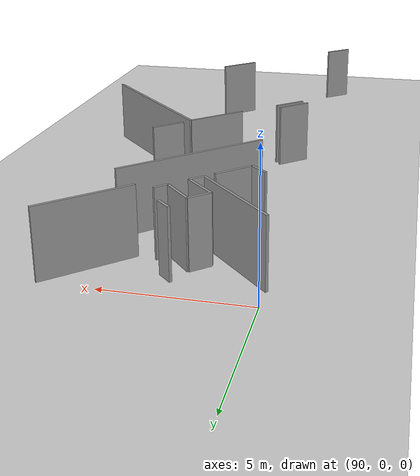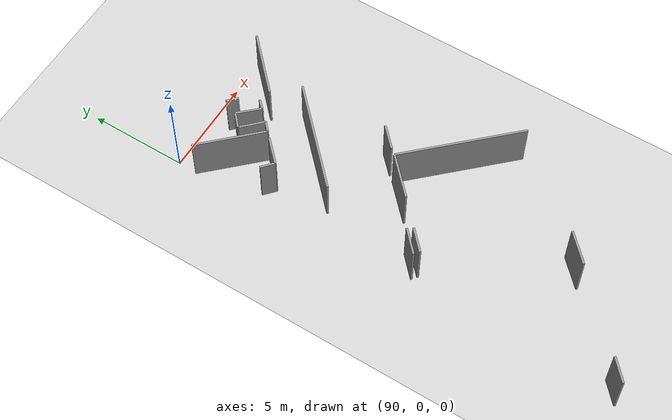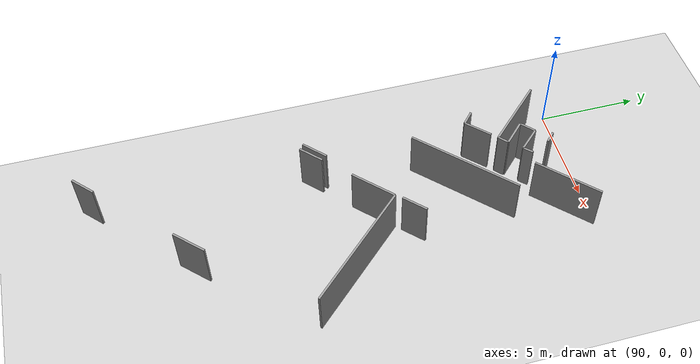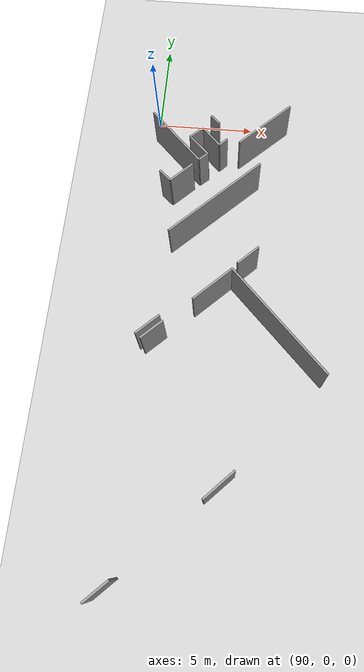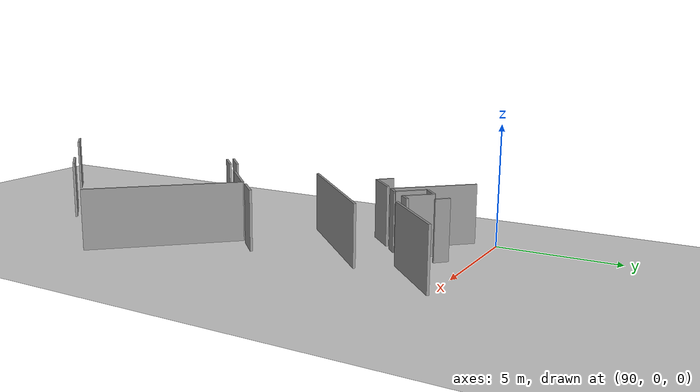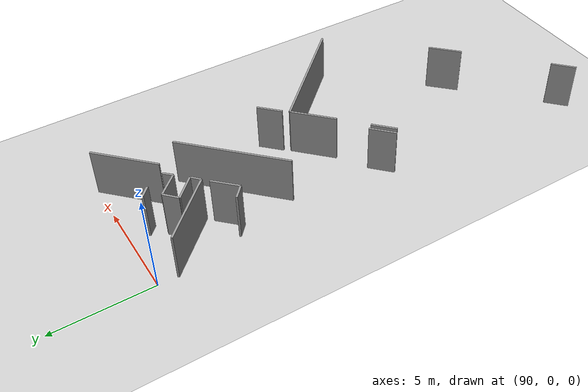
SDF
<sdf version="1.6">
 <world name="default">
  <model name="ground_plane">
   <static>1</static>
   <link name="link">
    <collision name="collision">
     <geometry><plane><normal>0 0 1</normal><size>100 100</size></plane></geometry>
     <surface><friction><ode><mu>100</mu><mu2>50</mu2></ode></friction></surface>
    </collision>
    <visual name="visual">
     <cast_shadows>0</cast_shadows>
     <geometry><plane><normal>0 0 1</normal><size>100 100</size></plane></geometry>
     <material>
      <script><uri>file://media/materials/scripts/gazebo.material</uri><name>Gazebo/Grey</name></script>
     </material>
    </visual>
   </link>
  </model>
  <model name="0510035343_A_40_1_102">
   <static>1</static>
   <link name="Wall_585">
    <collision name="Wall_585_Collision">
     <geometry><box><size>0.625201423975 0.1 2.5</size></box></geometry>
     <pose>0.312600711988 0 1.25 0 0 0</pose>
    </collision>
    <visual name="Wall_585_Visual">
     <pose>0.312600711988 0 1.25 0 0 0</pose>
     <geometry><box><size>0.625201423975 0.1 2.5</size></box></geometry>
     <material>
      <script><uri>file://media/materials/scripts/gazebo.material</uri><name>Gazebo/Grey</name></script>
      <ambient>1 1 1 1</ambient>
     </material>
    </visual>
    <pose>210.162429782 -25.6650480815 0 0 0 2.3846269295</pose>
   </link>
   <link name="Wall_649">
    <collision name="Wall_649_Collision">
     <geometry><box><size>3.6640591741 0.1 2.5</size></box></geometry>
     <pose>1.83202958705 0 1.25 0 0 0</pose>
    </collision>
    <visual name="Wall_649_Visual">
     <pose>1.83202958705 0 1.25 0 0 0</pose>
     <geometry><box><size>3.6640591741 0.1 2.5</size></box></geometry>
     <material>
      <script><uri>file://media/materials/scripts/gazebo.material</uri><name>Gazebo/Grey</name></script>
      <ambient>1 1 1 1</ambient>
     </material>
    </visual>
    <pose>209.304262274 -27.8919673744 0 0 0 2.34213161567</pose>
   </link>
   <link name="Wall_657">
    <collision name="Wall_657_Collision">
     <geometry><box><size>0.517345830783 0.1 2.5</size></box></geometry>
     <pose>0.258672915392 0 1.25 0 0 0</pose>
    </collision>
    <visual name="Wall_657_Visual">
     <pose>0.258672915392 0 1.25 0 0 0</pose>
     <geometry><box><size>0.517345830783 0.1 2.5</size></box></geometry>
     <material>
      <script><uri>file://media/materials/scripts/gazebo.material</uri><name>Gazebo/Grey</name></script>
      <ambient>1 1 1 1</ambient>
     </material>
    </visual>
    <pose>210.611825193 -26.5864356216 0 0 0 -2.33502444961</pose>
   </link>
   <link name="Wall_658">
    <collision name="Wall_658_Collision">
     <geometry><box><size>1.29811316026 0.1 2.5</size></box></geometry>
     <pose>0.64905658013 0 1.25 0 0 0</pose>
    </collision>
    <visual name="Wall_658_Visual">
     <pose>0.64905658013 0 1.25 0 0 0</pose>
     <geometry><box><size>1.29811316026 0.1 2.5</size></box></geometry>
     <material>
      <script><uri>file://media/materials/scripts/gazebo.material</uri><name>Gazebo/Grey</name></script>
      <ambient>1 1 1 1</ambient>
     </material>
    </visual>
    <pose>210.253832238 -26.9599162144 0 0 0 2.32479482334</pose>
   </link>
   <link name="Wall_659">
    <collision name="Wall_659_Collision">
     <geometry><box><size>0.828839471091 0.1 2.5</size></box></geometry>
     <pose>0.414419735545 0 1.25 0 0 0</pose>
    </collision>
    <visual name="Wall_659_Visual">
     <pose>0.414419735545 0 1.25 0 0 0</pose>
     <geometry><box><size>0.828839471091 0.1 2.5</size></box></geometry>
     <material>
      <script><uri>file://media/materials/scripts/gazebo.material</uri><name>Gazebo/Grey</name></script>
      <ambient>1 1 1 1</ambient>
     </material>
    </visual>
    <pose>209.365197245 -26.0136468945 0 0 0 -2.40581756591</pose>
   </link>
   <link name="Wall_660">
    <collision name="Wall_660_Collision">
     <geometry><box><size>1.35709766302 0.1 2.5</size></box></geometry>
     <pose>0.678548831508 0 1.25 0 0 0</pose>
    </collision>
    <visual name="Wall_660_Visual">
     <pose>0.678548831508 0 1.25 0 0 0</pose>
     <geometry><box><size>1.35709766302 0.1 2.5</size></box></geometry>
     <material>
      <script><uri>file://media/materials/scripts/gazebo.material</uri><name>Gazebo/Grey</name></script>
      <ambient>1 1 1 1</ambient>
     </material>
    </visual>
    <pose>208.750769621 -26.5699324003 0 0 0 -0.779974218704</pose>
   </link>
   <link name="Wall_661">
    <collision name="Wall_661_Collision">
     <geometry><box><size>0.551667183847 0.1 2.5</size></box></geometry>
     <pose>0.275833591923 0 1.25 0 0 0</pose>
    </collision>
    <visual name="Wall_661_Visual">
     <pose>0.275833591923 0 1.25 0 0 0</pose>
     <geometry><box><size>0.551667183847 0.1 2.5</size></box></geometry>
     <material>
      <script><uri>file://media/materials/scripts/gazebo.material</uri><name>Gazebo/Grey</name></script>
      <ambient>1 1 1 1</ambient>
     </material>
    </visual>
    <pose>209.715573328 -27.5243263829 0 0 0 -2.41219844705</pose>
   </link>
   <link name="Wall_668">
    <collision name="Wall_668_Collision">
     <geometry><box><size>5.79214066476 0.1 2.5</size></box></geometry>
     <pose>2.89607033238 0 1.25 0 0 0</pose>
    </collision>
    <visual name="Wall_668_Visual">
     <pose>2.89607033238 0 1.25 0 0 0</pose>
     <geometry><box><size>5.79214066476 0.1 2.5</size></box></geometry>
     <material>
      <script><uri>file://media/materials/scripts/gazebo.material</uri><name>Gazebo/Grey</name></script>
      <ambient>1 1 1 1</ambient>
     </material>
    </visual>
    <pose>208.197276968 -31.9306864705 0 0 0 0.768597710644</pose>
   </link>
   <link name="Wall_670">
    <collision name="Wall_670_Collision">
     <geometry><box><size>3.42888745458 0.1 2.5</size></box></geometry>
     <pose>1.71444372729 0 1.25 0 0 0</pose>
    </collision>
    <visual name="Wall_670_Visual">
     <pose>1.71444372729 0 1.25 0 0 0</pose>
     <geometry><box><size>3.42888745458 0.1 2.5</size></box></geometry>
     <material>
      <script><uri>file://media/materials/scripts/gazebo.material</uri><name>Gazebo/Grey</name></script>
      <ambient>1 1 1 1</ambient>
     </material>
    </visual>
    <pose>211.256720302 -26.7283633248 0 0 0 0.767385867816</pose>
   </link>
   <link name="Wall_678">
    <collision name="Wall_678_Collision">
     <geometry><box><size>1.37333962757 0.1 2.5</size></box></geometry>
     <pose>0.686669813785 0 1.25 0 0 0</pose>
    </collision>
    <visual name="Wall_678_Visual">
     <pose>0.686669813785 0 1.25 0 0 0</pose>
     <geometry><box><size>1.37333962757 0.1 2.5</size></box></geometry>
     <material>
      <script><uri>file://media/materials/scripts/gazebo.material</uri><name>Gazebo/Grey</name></script>
      <ambient>1 1 1 1</ambient>
     </material>
    </visual>
    <pose>208.237900282 -36.1920721064 0 0 0 -2.38678917823</pose>
   </link>
   <link name="Wall_683">
    <collision name="Wall_683_Collision">
     <geometry><box><size>1.43789597365 0.1 2.5</size></box></geometry>
     <pose>0.718947986827 0 1.25 0 0 0</pose>
    </collision>
    <visual name="Wall_683_Visual">
     <pose>0.718947986827 0 1.25 0 0 0</pose>
     <geometry><box><size>1.43789597365 0.1 2.5</size></box></geometry>
     <material>
      <script><uri>file://media/materials/scripts/gazebo.material</uri><name>Gazebo/Grey</name></script>
      <ambient>1 1 1 1</ambient>
     </material>
    </visual>
    <pose>209.022438034 -28.1664286394 0 0 0 -2.36256224031</pose>
   </link>
   <link name="Wall_684">
    <collision name="Wall_684_Collision">
     <geometry><box><size>0.756954203723 0.1 2.5</size></box></geometry>
     <pose>0.378477101861 0 1.25 0 0 0</pose>
    </collision>
    <visual name="Wall_684_Visual">
     <pose>0.378477101861 0 1.25 0 0 0</pose>
     <geometry><box><size>0.756954203723 0.1 2.5</size></box></geometry>
     <material>
      <script><uri>file://media/materials/scripts/gazebo.material</uri><name>Gazebo/Grey</name></script>
      <ambient>1 1 1 1</ambient>
     </material>
    </visual>
    <pose>207.999238313 -29.1766796788 0 0 0 2.41077206424</pose>
   </link>
   <link name="Wall_692">
    <collision name="Wall_692_Collision">
     <geometry><box><size>1.75029783802 0.1 2.5</size></box></geometry>
     <pose>0.875148919011 0 1.25 0 0 0</pose>
    </collision>
    <visual name="Wall_692_Visual">
     <pose>0.875148919011 0 1.25 0 0 0</pose>
     <geometry><box><size>1.75029783802 0.1 2.5</size></box></geometry>
     <material>
      <script><uri>file://media/materials/scripts/gazebo.material</uri><name>Gazebo/Grey</name></script>
      <ambient>1 1 1 1</ambient>
     </material>
    </visual>
    <pose>212.094576153 -42.681392618 0 0 0 -2.36347715967</pose>
   </link>
   <link name="Wall_693">
    <collision name="Wall_693_Collision">
     <geometry><box><size>1.29774878569 0.1 2.5</size></box></geometry>
     <pose>0.648874392845 0 1.25 0 0 0</pose>
    </collision>
    <visual name="Wall_693_Visual">
     <pose>0.648874392845 0 1.25 0 0 0</pose>
     <geometry><box><size>1.29774878569 0.1 2.5</size></box></geometry>
     <material>
      <script><uri>file://media/materials/scripts/gazebo.material</uri><name>Gazebo/Grey</name></script>
      <ambient>1 1 1 1</ambient>
     </material>
    </visual>
    <pose>207.491446888 -47.1453870323 0 0 0 -2.3916170979</pose>
   </link>
   <link name="Wall_697">
    <collision name="Wall_697_Collision">
     <geometry><box><size>1.28612052838 0.1 2.5</size></box></geometry>
     <pose>0.643060264188 0 1.25 0 0 0</pose>
    </collision>
    <visual name="Wall_697_Visual">
     <pose>0.643060264188 0 1.25 0 0 0</pose>
     <geometry><box><size>1.28612052838 0.1 2.5</size></box></geometry>
     <material>
      <script><uri>file://media/materials/scripts/gazebo.material</uri><name>Gazebo/Grey</name></script>
      <ambient>1 1 1 1</ambient>
     </material>
    </visual>
    <pose>207.486368974 -37.3287632105 0 0 0 0.757615898672</pose>
   </link>
   <link name="Wall_698">
    <collision name="Wall_698_Collision">
     <geometry><box><size>2.35985601259 0.1 2.5</size></box></geometry>
     <pose>1.17992800629 0 1.25 0 0 0</pose>
    </collision>
    <visual name="Wall_698_Visual">
     <pose>1.17992800629 0 1.25 0 0 0</pose>
     <geometry><box><size>2.35985601259 0.1 2.5</size></box></geometry>
     <material>
      <script><uri>file://media/materials/scripts/gazebo.material</uri><name>Gazebo/Grey</name></script>
      <ambient>1 1 1 1</ambient>
     </material>
    </visual>
    <pose>209.659716272 -35.3019137389 0 0 0 0.765768969751</pose>
   </link>
   <link name="Wall_699">
    <collision name="Wall_699_Collision">
     <geometry><box><size>6.50560140191 0.1 2.5</size></box></geometry>
     <pose>3.25280070095 0 1.25 0 0 0</pose>
    </collision>
    <visual name="Wall_699_Visual">
     <pose>3.25280070095 0 1.25 0 0 0</pose>
     <geometry><box><size>6.50560140191 0.1 2.5</size></box></geometry>
     <material>
      <script><uri>file://media/materials/scripts/gazebo.material</uri><name>Gazebo/Grey</name></script>
      <ambient>1 1 1 1</ambient>
     </material>
    </visual>
    <pose>211.360817544 -33.6663175601 0 0 0 -0.804440851625</pose>
   </link>
   <link name="Wall_704">
    <collision name="Wall_704_Collision">
     <geometry><box><size>1.30352145646 0.1 2.5</size></box></geometry>
     <pose>0.651760728231 0 1.25 0 0 0</pose>
    </collision>
    <visual name="Wall_704_Visual">
     <pose>0.651760728231 0 1.25 0 0 0</pose>
     <geometry><box><size>1.30352145646 0.1 2.5</size></box></geometry>
     <material>
      <script><uri>file://media/materials/scripts/gazebo.material</uri><name>Gazebo/Grey</name></script>
      <ambient>1 1 1 1</ambient>
     </material>
    </visual>
    <pose>211.589323685 -33.3776381351 0 0 0 0.771624929717</pose>
   </link>
   <pose>-116.8 24.3141911835 0 0 0 0</pose>
  </model>
 </world>
</sdf>
